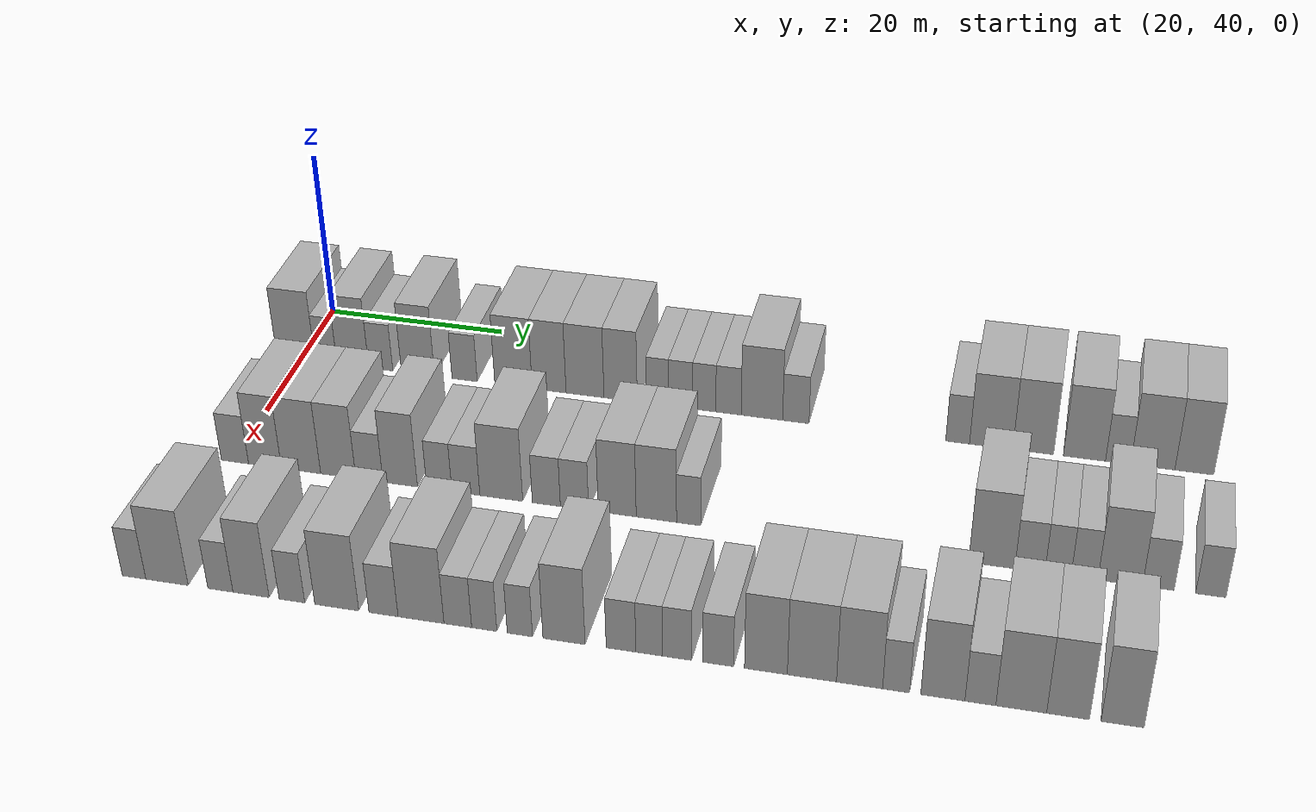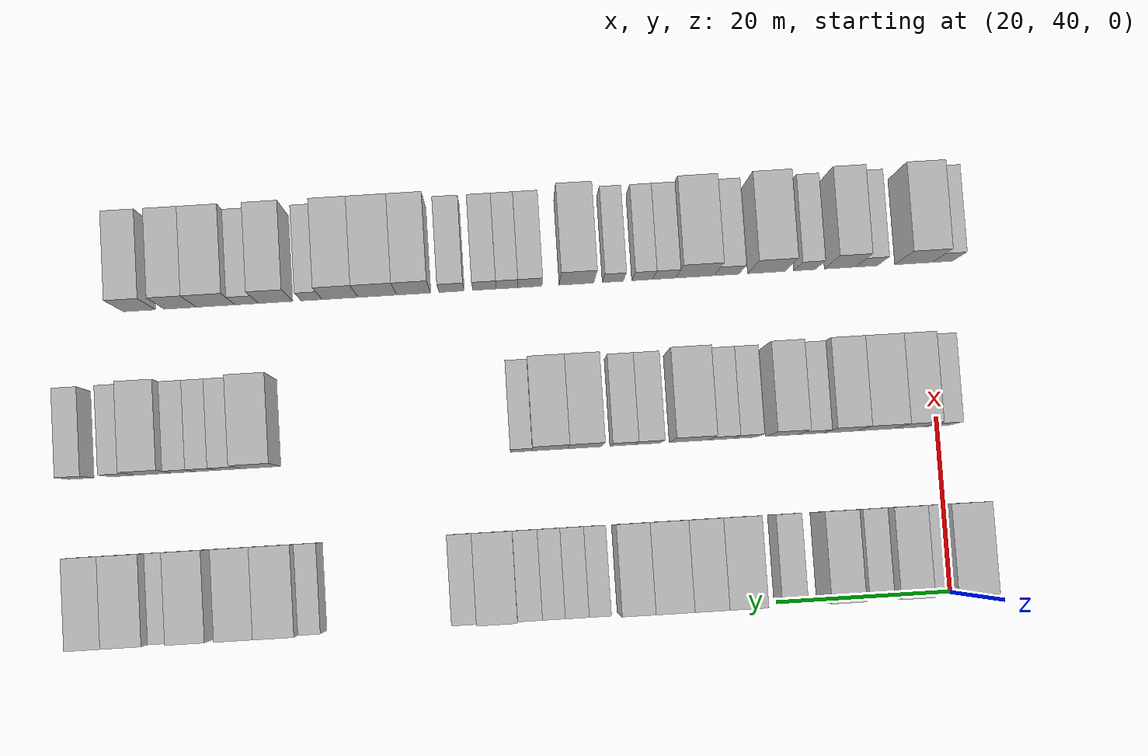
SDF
<sdf version="1.6">
 <world name="default">
  <model name="building_74">
   <static>1</static>
   <pose>25.0000 39.3322 0 0.000000 0.000000 0.000000</pose>
   <link name="link">
    <pose>0 0 4.50 0 0 0</pose>
    <collision name="collision"><geometry><box><size>10.0000 4.4958 9.0000</size></box></geometry></collision>
    <visual name="visual">
     <cast_shadows>0</cast_shadows>
     <geometry><box><size>10.0000 4.4958 9.0000</size></box></geometry>
     <material>
      <script>
       <uri>model://HANNAS_wall/materials/scripts</uri>
       <uri>model://HANNAS_wall/materials/textures</uri>
       <name>vrc/HANNAS_wall</name>
      </script>
     </material>
    </visual>
   </link>
  </model>
  <model name="building_75">
   <static>1</static>
   <pose>25.0000 42.8555 0 0.000000 0.000000 0.000000</pose>
   <link name="link">
    <pose>0 0 3.00 0 0 0</pose>
    <collision name="collision"><geometry><box><size>10.0000 2.5508 6.0000</size></box></geometry></collision>
    <visual name="visual">
     <cast_shadows>0</cast_shadows>
     <geometry><box><size>10.0000 2.5508 6.0000</size></box></geometry>
     <material>
      <script>
       <uri>model://HANNAS_wall/materials/scripts</uri>
       <uri>model://HANNAS_wall/materials/textures</uri>
       <name>vrc/HANNAS_wall</name>
      </script>
     </material>
    </visual>
   </link>
  </model>
  <model name="building_76">
   <static>1</static>
   <pose>25.0000 45.9827 0 0.000000 0.000000 0.000000</pose>
   <link name="link">
    <pose>0 0 4.50 0 0 0</pose>
    <collision name="collision"><geometry><box><size>10.0000 3.7036 9.0000</size></box></geometry></collision>
    <visual name="visual">
     <cast_shadows>0</cast_shadows>
     <geometry><box><size>10.0000 3.7036 9.0000</size></box></geometry>
     <material>
      <script>
       <uri>model://HANNAS_wall/materials/scripts</uri>
       <uri>model://HANNAS_wall/materials/textures</uri>
       <name>vrc/HANNAS_wall</name>
      </script>
     </material>
    </visual>
   </link>
  </model>
  <model name="building_77">
   <static>1</static>
   <pose>25.0000 49.2227 0 0.000000 0.000000 0.000000</pose>
   <link name="link">
    <pose>0 0 3.00 0 0 0</pose>
    <collision name="collision"><geometry><box><size>10.0000 2.7763 6.0000</size></box></geometry></collision>
    <visual name="visual">
     <cast_shadows>0</cast_shadows>
     <geometry><box><size>10.0000 2.7763 6.0000</size></box></geometry>
     <material>
      <script>
       <uri>model://HANNAS_wall/materials/scripts</uri>
       <uri>model://HANNAS_wall/materials/textures</uri>
       <name>vrc/HANNAS_wall</name>
      </script>
     </material>
    </visual>
   </link>
  </model>
  <model name="building_78">
   <static>1</static>
   <pose>25.0000 53.5101 0 0.000000 0.000000 0.000000</pose>
   <link name="link">
    <pose>0 0 4.50 0 0 0</pose>
    <collision name="collision"><geometry><box><size>10.0000 3.7986 9.0000</size></box></geometry></collision>
    <visual name="visual">
     <cast_shadows>0</cast_shadows>
     <geometry><box><size>10.0000 3.7986 9.0000</size></box></geometry>
     <material>
      <script>
       <uri>model://HANNAS_wall/materials/scripts</uri>
       <uri>model://HANNAS_wall/materials/textures</uri>
       <name>vrc/HANNAS_wall</name>
      </script>
     </material>
    </visual>
   </link>
  </model>
  <model name="building_79">
   <static>1</static>
   <pose>25.0000 58.8426 0 0.000000 0.000000 0.000000</pose>
   <link name="link">
    <pose>0 0 3.00 0 0 0</pose>
    <collision name="collision"><geometry><box><size>10.0000 2.8663 6.0000</size></box></geometry></collision>
    <visual name="visual">
     <cast_shadows>0</cast_shadows>
     <geometry><box><size>10.0000 2.8663 6.0000</size></box></geometry>
     <material>
      <script>
       <uri>model://HANNAS_wall/materials/scripts</uri>
       <uri>model://HANNAS_wall/materials/textures</uri>
       <name>vrc/HANNAS_wall</name>
      </script>
     </material>
    </visual>
   </link>
  </model>
  <model name="building_80">
   <static>1</static>
   <pose>25.0000 64.3835 0 0.000000 0.000000 0.000000</pose>
   <link name="link">
    <pose>0 0 4.50 0 0 0</pose>
    <collision name="collision"><geometry><box><size>10.0000 4.2156 9.0000</size></box></geometry></collision>
    <visual name="visual">
     <cast_shadows>0</cast_shadows>
     <geometry><box><size>10.0000 4.2156 9.0000</size></box></geometry>
     <material>
      <script>
       <uri>model://HANNAS_wall/materials/scripts</uri>
       <uri>model://HANNAS_wall/materials/textures</uri>
       <name>vrc/HANNAS_wall</name>
      </script>
     </material>
    </visual>
   </link>
  </model>
  <model name="building_81">
   <static>1</static>
   <pose>25.0000 68.3920 0 0.000000 0.000000 0.000000</pose>
   <link name="link">
    <pose>0 0 4.50 0 0 0</pose>
    <collision name="collision"><geometry><box><size>10.0000 3.8014 9.0000</size></box></geometry></collision>
    <visual name="visual">
     <cast_shadows>0</cast_shadows>
     <geometry><box><size>10.0000 3.8014 9.0000</size></box></geometry>
     <material>
      <script>
       <uri>model://HANNAS_wall/materials/scripts</uri>
       <uri>model://HANNAS_wall/materials/textures</uri>
       <name>vrc/HANNAS_wall</name>
      </script>
     </material>
    </visual>
   </link>
  </model>
  <model name="building_82">
   <static>1</static>
   <pose>25.0000 72.4098 0 0.000000 0.000000 0.000000</pose>
   <link name="link">
    <pose>0 0 4.50 0 0 0</pose>
    <collision name="collision"><geometry><box><size>10.0000 4.2342 9.0000</size></box></geometry></collision>
    <visual name="visual">
     <cast_shadows>0</cast_shadows>
     <geometry><box><size>10.0000 4.2342 9.0000</size></box></geometry>
     <material>
      <script>
       <uri>model://HANNAS_wall/materials/scripts</uri>
       <uri>model://HANNAS_wall/materials/textures</uri>
       <name>vrc/HANNAS_wall</name>
      </script>
     </material>
    </visual>
   </link>
  </model>
  <model name="building_83">
   <static>1</static>
   <pose>25.0000 76.3684 0 0.000000 0.000000 0.000000</pose>
   <link name="link">
    <pose>0 0 4.50 0 0 0</pose>
    <collision name="collision"><geometry><box><size>10.0000 3.6831 9.0000</size></box></geometry></collision>
    <visual name="visual">
     <cast_shadows>0</cast_shadows>
     <geometry><box><size>10.0000 3.6831 9.0000</size></box></geometry>
     <material>
      <script>
       <uri>model://HANNAS_wall/materials/scripts</uri>
       <uri>model://HANNAS_wall/materials/textures</uri>
       <name>vrc/HANNAS_wall</name>
      </script>
     </material>
    </visual>
   </link>
  </model>
  <model name="building_84">
   <static>1</static>
   <pose>25.0000 80.4334 0 0.000000 0.000000 0.000000</pose>
   <link name="link">
    <pose>0 0 3.00 0 0 0</pose>
    <collision name="collision"><geometry><box><size>10.0000 2.4469 6.0000</size></box></geometry></collision>
    <visual name="visual">
     <cast_shadows>0</cast_shadows>
     <geometry><box><size>10.0000 2.4469 6.0000</size></box></geometry>
     <material>
      <script>
       <uri>model://HANNAS_wall/materials/scripts</uri>
       <uri>model://HANNAS_wall/materials/textures</uri>
       <name>vrc/HANNAS_wall</name>
      </script>
     </material>
    </visual>
   </link>
  </model>
  <model name="building_85">
   <static>1</static>
   <pose>25.0000 82.9787 0 0.000000 0.000000 0.000000</pose>
   <link name="link">
    <pose>0 0 3.00 0 0 0</pose>
    <collision name="collision"><geometry><box><size>10.0000 2.6435 6.0000</size></box></geometry></collision>
    <visual name="visual">
     <cast_shadows>0</cast_shadows>
     <geometry><box><size>10.0000 2.6435 6.0000</size></box></geometry>
     <material>
      <script>
       <uri>model://HANNAS_wall/materials/scripts</uri>
       <uri>model://HANNAS_wall/materials/textures</uri>
       <name>vrc/HANNAS_wall</name>
      </script>
     </material>
    </visual>
   </link>
  </model>
  <model name="building_86">
   <static>1</static>
   <pose>25.0000 85.5653 0 0.000000 0.000000 0.000000</pose>
   <link name="link">
    <pose>0 0 3.00 0 0 0</pose>
    <collision name="collision"><geometry><box><size>10.0000 2.5298 6.0000</size></box></geometry></collision>
    <visual name="visual">
     <cast_shadows>0</cast_shadows>
     <geometry><box><size>10.0000 2.5298 6.0000</size></box></geometry>
     <material>
      <script>
       <uri>model://HANNAS_wall/materials/scripts</uri>
       <uri>model://HANNAS_wall/materials/textures</uri>
       <name>vrc/HANNAS_wall</name>
      </script>
     </material>
    </visual>
   </link>
  </model>
  <model name="building_87">
   <static>1</static>
   <pose>25.0000 88.2062 0 0.000000 0.000000 0.000000</pose>
   <link name="link">
    <pose>0 0 3.00 0 0 0</pose>
    <collision name="collision"><geometry><box><size>10.0000 2.7520 6.0000</size></box></geometry></collision>
    <visual name="visual">
     <cast_shadows>0</cast_shadows>
     <geometry><box><size>10.0000 2.7520 6.0000</size></box></geometry>
     <material>
      <script>
       <uri>model://HANNAS_wall/materials/scripts</uri>
       <uri>model://HANNAS_wall/materials/textures</uri>
       <name>vrc/HANNAS_wall</name>
      </script>
     </material>
    </visual>
   </link>
  </model>
  <model name="building_88">
   <static>1</static>
   <pose>25.0000 91.8163 0 0.000000 0.000000 0.000000</pose>
   <link name="link">
    <pose>0 0 4.50 0 0 0</pose>
    <collision name="collision"><geometry><box><size>10.0000 4.4682 9.0000</size></box></geometry></collision>
    <visual name="visual">
     <cast_shadows>0</cast_shadows>
     <geometry><box><size>10.0000 4.4682 9.0000</size></box></geometry>
     <material>
      <script>
       <uri>model://HANNAS_wall/materials/scripts</uri>
       <uri>model://HANNAS_wall/materials/textures</uri>
       <name>vrc/HANNAS_wall</name>
      </script>
     </material>
    </visual>
   </link>
  </model>
  <model name="building_89">
   <static>1</static>
   <pose>25.0000 95.4685 0 0.000000 0.000000 0.000000</pose>
   <link name="link">
    <pose>0 0 3.00 0 0 0</pose>
    <collision name="collision"><geometry><box><size>10.0000 2.8363 6.0000</size></box></geometry></collision>
    <visual name="visual">
     <cast_shadows>0</cast_shadows>
     <geometry><box><size>10.0000 2.8363 6.0000</size></box></geometry>
     <material>
      <script>
       <uri>model://HANNAS_wall/materials/scripts</uri>
       <uri>model://HANNAS_wall/materials/textures</uri>
       <name>vrc/HANNAS_wall</name>
      </script>
     </material>
    </visual>
   </link>
  </model>
  <model name="building_90">
   <static>1</static>
   <pose>25.0000 112.6101 0 0.000000 0.000000 0.000000</pose>
   <link name="link">
    <pose>0 0 3.00 0 0 0</pose>
    <collision name="collision"><geometry><box><size>10.0000 2.4823 6.0000</size></box></geometry></collision>
    <visual name="visual">
     <cast_shadows>0</cast_shadows>
     <geometry><box><size>10.0000 2.4823 6.0000</size></box></geometry>
     <material>
      <script>
       <uri>model://HANNAS_wall/materials/scripts</uri>
       <uri>model://HANNAS_wall/materials/textures</uri>
       <name>vrc/HANNAS_wall</name>
      </script>
     </material>
    </visual>
   </link>
  </model>
  <model name="building_91">
   <static>1</static>
   <pose>25.0000 116.0946 0 0.000000 0.000000 0.000000</pose>
   <link name="link">
    <pose>0 0 4.50 0 0 0</pose>
    <collision name="collision"><geometry><box><size>10.0000 4.4867 9.0000</size></box></geometry></collision>
    <visual name="visual">
     <cast_shadows>0</cast_shadows>
     <geometry><box><size>10.0000 4.4867 9.0000</size></box></geometry>
     <material>
      <script>
       <uri>model://HANNAS_wall/materials/scripts</uri>
       <uri>model://HANNAS_wall/materials/textures</uri>
       <name>vrc/HANNAS_wall</name>
      </script>
     </material>
    </visual>
   </link>
  </model>
  <model name="building_92">
   <static>1</static>
   <pose>25.0000 120.4470 0 0.000000 0.000000 0.000000</pose>
   <link name="link">
    <pose>0 0 4.50 0 0 0</pose>
    <collision name="collision"><geometry><box><size>10.0000 4.2181 9.0000</size></box></geometry></collision>
    <visual name="visual">
     <cast_shadows>0</cast_shadows>
     <geometry><box><size>10.0000 4.2181 9.0000</size></box></geometry>
     <material>
      <script>
       <uri>model://HANNAS_wall/materials/scripts</uri>
       <uri>model://HANNAS_wall/materials/textures</uri>
       <name>vrc/HANNAS_wall</name>
      </script>
     </material>
    </visual>
   </link>
  </model>
  <model name="building_93">
   <static>1</static>
   <pose>25.0000 125.7085 0 0.000000 0.000000 0.000000</pose>
   <link name="link">
    <pose>0 0 4.50 0 0 0</pose>
    <collision name="collision"><geometry><box><size>10.0000 4.3049 9.0000</size></box></geometry></collision>
    <visual name="visual">
     <cast_shadows>0</cast_shadows>
     <geometry><box><size>10.0000 4.3049 9.0000</size></box></geometry>
     <material>
      <script>
       <uri>model://HANNAS_wall/materials/scripts</uri>
       <uri>model://HANNAS_wall/materials/textures</uri>
       <name>vrc/HANNAS_wall</name>
      </script>
     </material>
    </visual>
   </link>
  </model>
  <model name="building_94">
   <static>1</static>
   <pose>25.0000 129.1371 0 0.000000 0.000000 0.000000</pose>
   <link name="link">
    <pose>0 0 3.00 0 0 0</pose>
    <collision name="collision"><geometry><box><size>10.0000 2.5523 6.0000</size></box></geometry></collision>
    <visual name="visual">
     <cast_shadows>0</cast_shadows>
     <geometry><box><size>10.0000 2.5523 6.0000</size></box></geometry>
     <material>
      <script>
       <uri>model://HANNAS_wall/materials/scripts</uri>
       <uri>model://HANNAS_wall/materials/textures</uri>
       <name>vrc/HANNAS_wall</name>
      </script>
     </material>
    </visual>
   </link>
  </model>
  <model name="building_95">
   <static>1</static>
   <pose>25.0000 132.6453 0 0.000000 0.000000 0.000000</pose>
   <link name="link">
    <pose>0 0 4.50 0 0 0</pose>
    <collision name="collision"><geometry><box><size>10.0000 4.4640 9.0000</size></box></geometry></collision>
    <visual name="visual">
     <cast_shadows>0</cast_shadows>
     <geometry><box><size>10.0000 4.4640 9.0000</size></box></geometry>
     <material>
      <script>
       <uri>model://HANNAS_wall/materials/scripts</uri>
       <uri>model://HANNAS_wall/materials/textures</uri>
       <name>vrc/HANNAS_wall</name>
      </script>
     </material>
    </visual>
   </link>
  </model>
  <model name="building_96">
   <static>1</static>
   <pose>25.0000 136.8360 0 0.000000 0.000000 0.000000</pose>
   <link name="link">
    <pose>0 0 4.50 0 0 0</pose>
    <collision name="collision"><geometry><box><size>10.0000 3.9174 9.0000</size></box></geometry></collision>
    <visual name="visual">
     <cast_shadows>0</cast_shadows>
     <geometry><box><size>10.0000 3.9174 9.0000</size></box></geometry>
     <material>
      <script>
       <uri>model://HANNAS_wall/materials/scripts</uri>
       <uri>model://HANNAS_wall/materials/textures</uri>
       <name>vrc/HANNAS_wall</name>
      </script>
     </material>
    </visual>
   </link>
  </model>
  <model name="building_185">
   <static>1</static>
   <pose>44.0000 40.1431 0 0.000000 0.000000 0.000000</pose>
   <link name="link">
    <pose>0 0 3.00 0 0 0</pose>
    <collision name="collision"><geometry><box><size>10.0000 2.9829 6.0000</size></box></geometry></collision>
    <visual name="visual">
     <cast_shadows>0</cast_shadows>
     <geometry><box><size>10.0000 2.9829 6.0000</size></box></geometry>
     <material>
      <script>
       <uri>model://HANNAS_wall/materials/scripts</uri>
       <uri>model://HANNAS_wall/materials/textures</uri>
       <name>vrc/HANNAS_wall</name>
      </script>
     </material>
    </visual>
   </link>
  </model>
  <model name="building_186">
   <static>1</static>
   <pose>44.0000 43.4349 0 0.000000 0.000000 0.000000</pose>
   <link name="link">
    <pose>0 0 4.50 0 0 0</pose>
    <collision name="collision"><geometry><box><size>10.0000 3.6007 9.0000</size></box></geometry></collision>
    <visual name="visual">
     <cast_shadows>0</cast_shadows>
     <geometry><box><size>10.0000 3.6007 9.0000</size></box></geometry>
     <material>
      <script>
       <uri>model://HANNAS_wall/materials/scripts</uri>
       <uri>model://HANNAS_wall/materials/textures</uri>
       <name>vrc/HANNAS_wall</name>
      </script>
     </material>
    </visual>
   </link>
  </model>
  <model name="building_187">
   <static>1</static>
   <pose>44.0000 47.3639 0 0.000000 0.000000 0.000000</pose>
   <link name="link">
    <pose>0 0 4.50 0 0 0</pose>
    <collision name="collision"><geometry><box><size>10.0000 4.2572 9.0000</size></box></geometry></collision>
    <visual name="visual">
     <cast_shadows>0</cast_shadows>
     <geometry><box><size>10.0000 4.2572 9.0000</size></box></geometry>
     <material>
      <script>
       <uri>model://HANNAS_wall/materials/scripts</uri>
       <uri>model://HANNAS_wall/materials/textures</uri>
       <name>vrc/HANNAS_wall</name>
      </script>
     </material>
    </visual>
   </link>
  </model>
  <model name="building_188">
   <static>1</static>
   <pose>44.0000 51.3937 0 0.000000 0.000000 0.000000</pose>
   <link name="link">
    <pose>0 0 4.50 0 0 0</pose>
    <collision name="collision"><geometry><box><size>10.0000 3.8025 9.0000</size></box></geometry></collision>
    <visual name="visual">
     <cast_shadows>0</cast_shadows>
     <geometry><box><size>10.0000 3.8025 9.0000</size></box></geometry>
     <material>
      <script>
       <uri>model://HANNAS_wall/materials/scripts</uri>
       <uri>model://HANNAS_wall/materials/textures</uri>
       <name>vrc/HANNAS_wall</name>
      </script>
     </material>
    </visual>
   </link>
  </model>
  <model name="building_189">
   <static>1</static>
   <pose>44.0000 54.7465 0 0.000000 0.000000 0.000000</pose>
   <link name="link">
    <pose>0 0 3.00 0 0 0</pose>
    <collision name="collision"><geometry><box><size>10.0000 2.9029 6.0000</size></box></geometry></collision>
    <visual name="visual">
     <cast_shadows>0</cast_shadows>
     <geometry><box><size>10.0000 2.9029 6.0000</size></box></geometry>
     <material>
      <script>
       <uri>model://HANNAS_wall/materials/scripts</uri>
       <uri>model://HANNAS_wall/materials/textures</uri>
       <name>vrc/HANNAS_wall</name>
      </script>
     </material>
    </visual>
   </link>
  </model>
  <model name="building_190">
   <static>1</static>
   <pose>44.0000 58.0348 0 0.000000 0.000000 0.000000</pose>
   <link name="link">
    <pose>0 0 4.50 0 0 0</pose>
    <collision name="collision"><geometry><box><size>10.0000 3.6737 9.0000</size></box></geometry></collision>
    <visual name="visual">
     <cast_shadows>0</cast_shadows>
     <geometry><box><size>10.0000 3.6737 9.0000</size></box></geometry>
     <material>
      <script>
       <uri>model://HANNAS_wall/materials/scripts</uri>
       <uri>model://HANNAS_wall/materials/textures</uri>
       <name>vrc/HANNAS_wall</name>
      </script>
     </material>
    </visual>
   </link>
  </model>
  <model name="building_191">
   <static>1</static>
   <pose>44.0000 62.1975 0 0.000000 0.000000 0.000000</pose>
   <link name="link">
    <pose>0 0 3.00 0 0 0</pose>
    <collision name="collision"><geometry><box><size>10.0000 2.6518 6.0000</size></box></geometry></collision>
    <visual name="visual">
     <cast_shadows>0</cast_shadows>
     <geometry><box><size>10.0000 2.6518 6.0000</size></box></geometry>
     <material>
      <script>
       <uri>model://HANNAS_wall/materials/scripts</uri>
       <uri>model://HANNAS_wall/materials/textures</uri>
       <name>vrc/HANNAS_wall</name>
      </script>
     </material>
    </visual>
   </link>
  </model>
  <model name="building_192">
   <static>1</static>
   <pose>44.0000 64.9943 0 0.000000 0.000000 0.000000</pose>
   <link name="link">
    <pose>0 0 3.00 0 0 0</pose>
    <collision name="collision"><geometry><box><size>10.0000 2.9417 6.0000</size></box></geometry></collision>
    <visual name="visual">
     <cast_shadows>0</cast_shadows>
     <geometry><box><size>10.0000 2.9417 6.0000</size></box></geometry>
     <material>
      <script>
       <uri>model://HANNAS_wall/materials/scripts</uri>
       <uri>model://HANNAS_wall/materials/textures</uri>
       <name>vrc/HANNAS_wall</name>
      </script>
     </material>
    </visual>
   </link>
  </model>
  <model name="building_193">
   <static>1</static>
   <pose>44.0000 68.7101 0 0.000000 0.000000 0.000000</pose>
   <link name="link">
    <pose>0 0 4.50 0 0 0</pose>
    <collision name="collision"><geometry><box><size>10.0000 4.4899 9.0000</size></box></geometry></collision>
    <visual name="visual">
     <cast_shadows>0</cast_shadows>
     <geometry><box><size>10.0000 4.4899 9.0000</size></box></geometry>
     <material>
      <script>
       <uri>model://HANNAS_wall/materials/scripts</uri>
       <uri>model://HANNAS_wall/materials/textures</uri>
       <name>vrc/HANNAS_wall</name>
      </script>
     </material>
    </visual>
   </link>
  </model>
  <model name="building_194">
   <static>1</static>
   <pose>44.0000 73.4121 0 0.000000 0.000000 0.000000</pose>
   <link name="link">
    <pose>0 0 3.00 0 0 0</pose>
    <collision name="collision"><geometry><box><size>10.0000 2.9141 6.0000</size></box></geometry></collision>
    <visual name="visual">
     <cast_shadows>0</cast_shadows>
     <geometry><box><size>10.0000 2.9141 6.0000</size></box></geometry>
     <material>
      <script>
       <uri>model://HANNAS_wall/materials/scripts</uri>
       <uri>model://HANNAS_wall/materials/textures</uri>
       <name>vrc/HANNAS_wall</name>
      </script>
     </material>
    </visual>
   </link>
  </model>
  <model name="building_195">
   <static>1</static>
   <pose>44.0000 76.3291 0 0.000000 0.000000 0.000000</pose>
   <link name="link">
    <pose>0 0 3.00 0 0 0</pose>
    <collision name="collision"><geometry><box><size>10.0000 2.9200 6.0000</size></box></geometry></collision>
    <visual name="visual">
     <cast_shadows>0</cast_shadows>
     <geometry><box><size>10.0000 2.9200 6.0000</size></box></geometry>
     <material>
      <script>
       <uri>model://HANNAS_wall/materials/scripts</uri>
       <uri>model://HANNAS_wall/materials/textures</uri>
       <name>vrc/HANNAS_wall</name>
      </script>
     </material>
    </visual>
   </link>
  </model>
  <model name="building_196">
   <static>1</static>
   <pose>44.0000 80.7308 0 0.000000 0.000000 0.000000</pose>
   <link name="link">
    <pose>0 0 4.50 0 0 0</pose>
    <collision name="collision"><geometry><box><size>10.0000 3.8834 9.0000</size></box></geometry></collision>
    <visual name="visual">
     <cast_shadows>0</cast_shadows>
     <geometry><box><size>10.0000 3.8834 9.0000</size></box></geometry>
     <material>
      <script>
       <uri>model://HANNAS_wall/materials/scripts</uri>
       <uri>model://HANNAS_wall/materials/textures</uri>
       <name>vrc/HANNAS_wall</name>
      </script>
     </material>
    </visual>
   </link>
  </model>
  <model name="building_197">
   <static>1</static>
   <pose>44.0000 84.7281 0 0.000000 0.000000 0.000000</pose>
   <link name="link">
    <pose>0 0 4.50 0 0 0</pose>
    <collision name="collision"><geometry><box><size>10.0000 4.1111 9.0000</size></box></geometry></collision>
    <visual name="visual">
     <cast_shadows>0</cast_shadows>
     <geometry><box><size>10.0000 4.1111 9.0000</size></box></geometry>
     <material>
      <script>
       <uri>model://HANNAS_wall/materials/scripts</uri>
       <uri>model://HANNAS_wall/materials/textures</uri>
       <name>vrc/HANNAS_wall</name>
      </script>
     </material>
    </visual>
   </link>
  </model>
  <model name="building_198">
   <static>1</static>
   <pose>44.0000 88.0117 0 0.000000 0.000000 0.000000</pose>
   <link name="link">
    <pose>0 0 3.00 0 0 0</pose>
    <collision name="collision"><geometry><box><size>10.0000 2.4561 6.0000</size></box></geometry></collision>
    <visual name="visual">
     <cast_shadows>0</cast_shadows>
     <geometry><box><size>10.0000 2.4561 6.0000</size></box></geometry>
     <material>
      <script>
       <uri>model://HANNAS_wall/materials/scripts</uri>
       <uri>model://HANNAS_wall/materials/textures</uri>
       <name>vrc/HANNAS_wall</name>
      </script>
     </material>
    </visual>
   </link>
  </model>
  <model name="building_199">
   <static>1</static>
   <pose>44.0000 117.9008 0 0.000000 0.000000 0.000000</pose>
   <link name="link">
    <pose>0 0 4.50 0 0 0</pose>
    <collision name="collision"><geometry><box><size>10.0000 4.4407 9.0000</size></box></geometry></collision>
    <visual name="visual">
     <cast_shadows>0</cast_shadows>
     <geometry><box><size>10.0000 4.4407 9.0000</size></box></geometry>
     <material>
      <script>
       <uri>model://HANNAS_wall/materials/scripts</uri>
       <uri>model://HANNAS_wall/materials/textures</uri>
       <name>vrc/HANNAS_wall</name>
      </script>
     </material>
    </visual>
   </link>
  </model>
  <model name="building_200">
   <static>1</static>
   <pose>44.0000 121.5549 0 0.000000 0.000000 0.000000</pose>
   <link name="link">
    <pose>0 0 3.00 0 0 0</pose>
    <collision name="collision"><geometry><box><size>10.0000 2.8676 6.0000</size></box></geometry></collision>
    <visual name="visual">
     <cast_shadows>0</cast_shadows>
     <geometry><box><size>10.0000 2.8676 6.0000</size></box></geometry>
     <material>
      <script>
       <uri>model://HANNAS_wall/materials/scripts</uri>
       <uri>model://HANNAS_wall/materials/textures</uri>
       <name>vrc/HANNAS_wall</name>
      </script>
     </material>
    </visual>
   </link>
  </model>
  <model name="building_201">
   <static>1</static>
   <pose>44.0000 124.2289 0 0.000000 0.000000 0.000000</pose>
   <link name="link">
    <pose>0 0 3.00 0 0 0</pose>
    <collision name="collision"><geometry><box><size>10.0000 2.4803 6.0000</size></box></geometry></collision>
    <visual name="visual">
     <cast_shadows>0</cast_shadows>
     <geometry><box><size>10.0000 2.4803 6.0000</size></box></geometry>
     <material>
      <script>
       <uri>model://HANNAS_wall/materials/scripts</uri>
       <uri>model://HANNAS_wall/materials/textures</uri>
       <name>vrc/HANNAS_wall</name>
      </script>
     </material>
    </visual>
   </link>
  </model>
  <model name="building_202">
   <static>1</static>
   <pose>44.0000 126.7355 0 0.000000 0.000000 0.000000</pose>
   <link name="link">
    <pose>0 0 3.00 0 0 0</pose>
    <collision name="collision"><geometry><box><size>10.0000 2.5328 6.0000</size></box></geometry></collision>
    <visual name="visual">
     <cast_shadows>0</cast_shadows>
     <geometry><box><size>10.0000 2.5328 6.0000</size></box></geometry>
     <material>
      <script>
       <uri>model://HANNAS_wall/materials/scripts</uri>
       <uri>model://HANNAS_wall/materials/textures</uri>
       <name>vrc/HANNAS_wall</name>
      </script>
     </material>
    </visual>
   </link>
  </model>
  <model name="building_203">
   <static>1</static>
   <pose>44.0000 130.0985 0 0.000000 0.000000 0.000000</pose>
   <link name="link">
    <pose>0 0 4.50 0 0 0</pose>
    <collision name="collision"><geometry><box><size>10.0000 4.1933 9.0000</size></box></geometry></collision>
    <visual name="visual">
     <cast_shadows>0</cast_shadows>
     <geometry><box><size>10.0000 4.1933 9.0000</size></box></geometry>
     <material>
      <script>
       <uri>model://HANNAS_wall/materials/scripts</uri>
       <uri>model://HANNAS_wall/materials/textures</uri>
       <name>vrc/HANNAS_wall</name>
      </script>
     </material>
    </visual>
   </link>
  </model>
  <model name="building_204">
   <static>1</static>
   <pose>44.0000 133.6754 0 0.000000 0.000000 0.000000</pose>
   <link name="link">
    <pose>0 0 3.00 0 0 0</pose>
    <collision name="collision"><geometry><box><size>10.0000 2.9605 6.0000</size></box></geometry></collision>
    <visual name="visual">
     <cast_shadows>0</cast_shadows>
     <geometry><box><size>10.0000 2.9605 6.0000</size></box></geometry>
     <material>
      <script>
       <uri>model://HANNAS_wall/materials/scripts</uri>
       <uri>model://HANNAS_wall/materials/textures</uri>
       <name>vrc/HANNAS_wall</name>
      </script>
     </material>
    </visual>
   </link>
  </model>
  <model name="building_205">
   <static>1</static>
   <pose>44.0000 138.5619 0 0.000000 0.000000 0.000000</pose>
   <link name="link">
    <pose>0 0 3.00 0 0 0</pose>
    <collision name="collision"><geometry><box><size>10.0000 2.8124 6.0000</size></box></geometry></collision>
    <visual name="visual">
     <cast_shadows>0</cast_shadows>
     <geometry><box><size>10.0000 2.8124 6.0000</size></box></geometry>
     <material>
      <script>
       <uri>model://HANNAS_wall/materials/scripts</uri>
       <uri>model://HANNAS_wall/materials/textures</uri>
       <name>vrc/HANNAS_wall</name>
      </script>
     </material>
    </visual>
   </link>
  </model>
  <model name="building_299">
   <static>1</static>
   <pose>63.0000 37.8719 0 0.000000 0.000000 0.000000</pose>
   <link name="link">
    <pose>0 0 3.00 0 0 0</pose>
    <collision name="collision"><geometry><box><size>10.0000 2.4067 6.0000</size></box></geometry></collision>
    <visual name="visual">
     <cast_shadows>0</cast_shadows>
     <geometry><box><size>10.0000 2.4067 6.0000</size></box></geometry>
     <material>
      <script>
       <uri>model://HANNAS_wall/materials/scripts</uri>
       <uri>model://HANNAS_wall/materials/textures</uri>
       <name>vrc/HANNAS_wall</name>
      </script>
     </material>
    </visual>
   </link>
  </model>
  <model name="building_300">
   <static>1</static>
   <pose>63.0000 41.2428 0 0.000000 0.000000 0.000000</pose>
   <link name="link">
    <pose>0 0 4.50 0 0 0</pose>
    <collision name="collision"><geometry><box><size>10.0000 4.3351 9.0000</size></box></geometry></collision>
    <visual name="visual">
     <cast_shadows>0</cast_shadows>
     <geometry><box><size>10.0000 4.3351 9.0000</size></box></geometry>
     <material>
      <script>
       <uri>model://HANNAS_wall/materials/scripts</uri>
       <uri>model://HANNAS_wall/materials/textures</uri>
       <name>vrc/HANNAS_wall</name>
      </script>
     </material>
    </visual>
   </link>
  </model>
  <model name="building_301">
   <static>1</static>
   <pose>63.0000 46.6826 0 0.000000 0.000000 0.000000</pose>
   <link name="link">
    <pose>0 0 3.00 0 0 0</pose>
    <collision name="collision"><geometry><box><size>10.0000 2.5446 6.0000</size></box></geometry></collision>
    <visual name="visual">
     <cast_shadows>0</cast_shadows>
     <geometry><box><size>10.0000 2.5446 6.0000</size></box></geometry>
     <material>
      <script>
       <uri>model://HANNAS_wall/materials/scripts</uri>
       <uri>model://HANNAS_wall/materials/textures</uri>
       <name>vrc/HANNAS_wall</name>
      </script>
     </material>
    </visual>
   </link>
  </model>
  <model name="building_302">
   <static>1</static>
   <pose>63.0000 49.7782 0 0.000000 0.000000 0.000000</pose>
   <link name="link">
    <pose>0 0 4.50 0 0 0</pose>
    <collision name="collision"><geometry><box><size>10.0000 3.6466 9.0000</size></box></geometry></collision>
    <visual name="visual">
     <cast_shadows>0</cast_shadows>
     <geometry><box><size>10.0000 3.6466 9.0000</size></box></geometry>
     <material>
      <script>
       <uri>model://HANNAS_wall/materials/scripts</uri>
       <uri>model://HANNAS_wall/materials/textures</uri>
       <name>vrc/HANNAS_wall</name>
      </script>
     </material>
    </visual>
   </link>
  </model>
  <model name="building_303">
   <static>1</static>
   <pose>63.0000 53.8826 0 0.000000 0.000000 0.000000</pose>
   <link name="link">
    <pose>0 0 3.00 0 0 0</pose>
    <collision name="collision"><geometry><box><size>10.0000 2.5620 6.0000</size></box></geometry></collision>
    <visual name="visual">
     <cast_shadows>0</cast_shadows>
     <geometry><box><size>10.0000 2.5620 6.0000</size></box></geometry>
     <material>
      <script>
       <uri>model://HANNAS_wall/materials/scripts</uri>
       <uri>model://HANNAS_wall/materials/textures</uri>
       <name>vrc/HANNAS_wall</name>
      </script>
     </material>
    </visual>
   </link>
  </model>
  <model name="building_304">
   <static>1</static>
   <pose>63.0000 58.3463 0 0.000000 0.000000 0.000000</pose>
   <link name="link">
    <pose>0 0 4.50 0 0 0</pose>
    <collision name="collision"><geometry><box><size>10.0000 4.3653 9.0000</size></box></geometry></collision>
    <visual name="visual">
     <cast_shadows>0</cast_shadows>
     <geometry><box><size>10.0000 4.3653 9.0000</size></box></geometry>
     <material>
      <script>
       <uri>model://HANNAS_wall/materials/scripts</uri>
       <uri>model://HANNAS_wall/materials/textures</uri>
       <name>vrc/HANNAS_wall</name>
      </script>
     </material>
    </visual>
   </link>
  </model>
  <model name="building_305">
   <static>1</static>
   <pose>63.0000 62.9622 0 0.000000 0.000000 0.000000</pose>
   <link name="link">
    <pose>0 0 3.00 0 0 0</pose>
    <collision name="collision"><geometry><box><size>10.0000 2.8665 6.0000</size></box></geometry></collision>
    <visual name="visual">
     <cast_shadows>0</cast_shadows>
     <geometry><box><size>10.0000 2.8665 6.0000</size></box></geometry>
     <material>
      <script>
       <uri>model://HANNAS_wall/materials/scripts</uri>
       <uri>model://HANNAS_wall/materials/textures</uri>
       <name>vrc/HANNAS_wall</name>
      </script>
     </material>
    </visual>
   </link>
  </model>
  <model name="building_306">
   <static>1</static>
   <pose>63.0000 66.6370 0 0.000000 0.000000 0.000000</pose>
   <link name="link">
    <pose>0 0 4.50 0 0 0</pose>
    <collision name="collision"><geometry><box><size>10.0000 4.4831 9.0000</size></box></geometry></collision>
    <visual name="visual">
     <cast_shadows>0</cast_shadows>
     <geometry><box><size>10.0000 4.4831 9.0000</size></box></geometry>
     <material>
      <script>
       <uri>model://HANNAS_wall/materials/scripts</uri>
       <uri>model://HANNAS_wall/materials/textures</uri>
       <name>vrc/HANNAS_wall</name>
      </script>
     </material>
    </visual>
   </link>
  </model>
  <model name="building_307">
   <static>1</static>
   <pose>63.0000 70.2202 0 0.000000 0.000000 0.000000</pose>
   <link name="link">
    <pose>0 0 3.00 0 0 0</pose>
    <collision name="collision"><geometry><box><size>10.0000 2.6832 6.0000</size></box></geometry></collision>
    <visual name="visual">
     <cast_shadows>0</cast_shadows>
     <geometry><box><size>10.0000 2.6832 6.0000</size></box></geometry>
     <material>
      <script>
       <uri>model://HANNAS_wall/materials/scripts</uri>
       <uri>model://HANNAS_wall/materials/textures</uri>
       <name>vrc/HANNAS_wall</name>
      </script>
     </material>
    </visual>
   </link>
  </model>
  <model name="building_308">
   <static>1</static>
   <pose>63.0000 72.7784 0 0.000000 0.000000 0.000000</pose>
   <link name="link">
    <pose>0 0 3.00 0 0 0</pose>
    <collision name="collision"><geometry><box><size>10.0000 2.4334 6.0000</size></box></geometry></collision>
    <visual name="visual">
     <cast_shadows>0</cast_shadows>
     <geometry><box><size>10.0000 2.4334 6.0000</size></box></geometry>
     <material>
      <script>
       <uri>model://HANNAS_wall/materials/scripts</uri>
       <uri>model://HANNAS_wall/materials/textures</uri>
       <name>vrc/HANNAS_wall</name>
      </script>
     </material>
    </visual>
   </link>
  </model>
  <model name="building_309">
   <static>1</static>
   <pose>63.0000 76.2073 0 0.000000 0.000000 0.000000</pose>
   <link name="link">
    <pose>0 0 3.00 0 0 0</pose>
    <collision name="collision"><geometry><box><size>10.0000 2.4243 6.0000</size></box></geometry></collision>
    <visual name="visual">
     <cast_shadows>0</cast_shadows>
     <geometry><box><size>10.0000 2.4243 6.0000</size></box></geometry>
     <material>
      <script>
       <uri>model://HANNAS_wall/materials/scripts</uri>
       <uri>model://HANNAS_wall/materials/textures</uri>
       <name>vrc/HANNAS_wall</name>
      </script>
     </material>
    </visual>
   </link>
  </model>
  <model name="building_310">
   <static>1</static>
   <pose>63.0000 80.4223 0 0.000000 0.000000 0.000000</pose>
   <link name="link">
    <pose>0 0 4.50 0 0 0</pose>
    <collision name="collision"><geometry><box><size>10.0000 4.0057 9.0000</size></box></geometry></collision>
    <visual name="visual">
     <cast_shadows>0</cast_shadows>
     <geometry><box><size>10.0000 4.0057 9.0000</size></box></geometry>
     <material>
      <script>
       <uri>model://HANNAS_wall/materials/scripts</uri>
       <uri>model://HANNAS_wall/materials/textures</uri>
       <name>vrc/HANNAS_wall</name>
      </script>
     </material>
    </visual>
   </link>
  </model>
  <model name="building_311">
   <static>1</static>
   <pose>63.0000 85.8263 0 0.000000 0.000000 0.000000</pose>
   <link name="link">
    <pose>0 0 3.00 0 0 0</pose>
    <collision name="collision"><geometry><box><size>10.0000 2.8021 6.0000</size></box></geometry></collision>
    <visual name="visual">
     <cast_shadows>0</cast_shadows>
     <geometry><box><size>10.0000 2.8021 6.0000</size></box></geometry>
     <material>
      <script>
       <uri>model://HANNAS_wall/materials/scripts</uri>
       <uri>model://HANNAS_wall/materials/textures</uri>
       <name>vrc/HANNAS_wall</name>
      </script>
     </material>
    </visual>
   </link>
  </model>
  <model name="building_312">
   <static>1</static>
   <pose>63.0000 88.4804 0 0.000000 0.000000 0.000000</pose>
   <link name="link">
    <pose>0 0 3.00 0 0 0</pose>
    <collision name="collision"><geometry><box><size>10.0000 2.5061 6.0000</size></box></geometry></collision>
    <visual name="visual">
     <cast_shadows>0</cast_shadows>
     <geometry><box><size>10.0000 2.5061 6.0000</size></box></geometry>
     <material>
      <script>
       <uri>model://HANNAS_wall/materials/scripts</uri>
       <uri>model://HANNAS_wall/materials/textures</uri>
       <name>vrc/HANNAS_wall</name>
      </script>
     </material>
    </visual>
   </link>
  </model>
  <model name="building_313">
   <static>1</static>
   <pose>63.0000 91.0857 0 0.000000 0.000000 0.000000</pose>
   <link name="link">
    <pose>0 0 3.00 0 0 0</pose>
    <collision name="collision"><geometry><box><size>10.0000 2.7044 6.0000</size></box></geometry></collision>
    <visual name="visual">
     <cast_shadows>0</cast_shadows>
     <geometry><box><size>10.0000 2.7044 6.0000</size></box></geometry>
     <material>
      <script>
       <uri>model://HANNAS_wall/materials/scripts</uri>
       <uri>model://HANNAS_wall/materials/textures</uri>
       <name>vrc/HANNAS_wall</name>
      </script>
     </material>
    </visual>
   </link>
  </model>
  <model name="building_314">
   <static>1</static>
   <pose>63.0000 94.8861 0 0.000000 0.000000 0.000000</pose>
   <link name="link">
    <pose>0 0 3.00 0 0 0</pose>
    <collision name="collision"><geometry><box><size>10.0000 2.8964 6.0000</size></box></geometry></collision>
    <visual name="visual">
     <cast_shadows>0</cast_shadows>
     <geometry><box><size>10.0000 2.8964 6.0000</size></box></geometry>
     <material>
      <script>
       <uri>model://HANNAS_wall/materials/scripts</uri>
       <uri>model://HANNAS_wall/materials/textures</uri>
       <name>vrc/HANNAS_wall</name>
      </script>
     </material>
    </visual>
   </link>
  </model>
  <model name="building_315">
   <static>1</static>
   <pose>63.0000 99.3007 0 0.000000 0.000000 0.000000</pose>
   <link name="link">
    <pose>0 0 4.50 0 0 0</pose>
    <collision name="collision"><geometry><box><size>10.0000 3.9327 9.0000</size></box></geometry></collision>
    <visual name="visual">
     <cast_shadows>0</cast_shadows>
     <geometry><box><size>10.0000 3.9327 9.0000</size></box></geometry>
     <material>
      <script>
       <uri>model://HANNAS_wall/materials/scripts</uri>
       <uri>model://HANNAS_wall/materials/textures</uri>
       <name>vrc/HANNAS_wall</name>
      </script>
     </material>
    </visual>
   </link>
  </model>
  <model name="building_316">
   <static>1</static>
   <pose>63.0000 103.5090 0 0.000000 0.000000 0.000000</pose>
   <link name="link">
    <pose>0 0 4.50 0 0 0</pose>
    <collision name="collision"><geometry><box><size>10.0000 4.4839 9.0000</size></box></geometry></collision>
    <visual name="visual">
     <cast_shadows>0</cast_shadows>
     <geometry><box><size>10.0000 4.4839 9.0000</size></box></geometry>
     <material>
      <script>
       <uri>model://HANNAS_wall/materials/scripts</uri>
       <uri>model://HANNAS_wall/materials/textures</uri>
       <name>vrc/HANNAS_wall</name>
      </script>
     </material>
    </visual>
   </link>
  </model>
  <model name="building_317">
   <static>1</static>
   <pose>63.0000 107.8317 0 0.000000 0.000000 0.000000</pose>
   <link name="link">
    <pose>0 0 4.50 0 0 0</pose>
    <collision name="collision"><geometry><box><size>10.0000 4.1615 9.0000</size></box></geometry></collision>
    <visual name="visual">
     <cast_shadows>0</cast_shadows>
     <geometry><box><size>10.0000 4.1615 9.0000</size></box></geometry>
     <material>
      <script>
       <uri>model://HANNAS_wall/materials/scripts</uri>
       <uri>model://HANNAS_wall/materials/textures</uri>
       <name>vrc/HANNAS_wall</name>
      </script>
     </material>
    </visual>
   </link>
  </model>
  <model name="building_318">
   <static>1</static>
   <pose>63.0000 111.1244 0 0.000000 0.000000 0.000000</pose>
   <link name="link">
    <pose>0 0 3.00 0 0 0</pose>
    <collision name="collision"><geometry><box><size>10.0000 2.4241 6.0000</size></box></geometry></collision>
    <visual name="visual">
     <cast_shadows>0</cast_shadows>
     <geometry><box><size>10.0000 2.4241 6.0000</size></box></geometry>
     <material>
      <script>
       <uri>model://HANNAS_wall/materials/scripts</uri>
       <uri>model://HANNAS_wall/materials/textures</uri>
       <name>vrc/HANNAS_wall</name>
      </script>
     </material>
    </visual>
   </link>
  </model>
  <model name="building_319">
   <static>1</static>
   <pose>63.0000 115.3024 0 0.000000 0.000000 0.000000</pose>
   <link name="link">
    <pose>0 0 4.50 0 0 0</pose>
    <collision name="collision"><geometry><box><size>10.0000 3.9319 9.0000</size></box></geometry></collision>
    <visual name="visual">
     <cast_shadows>0</cast_shadows>
     <geometry><box><size>10.0000 3.9319 9.0000</size></box></geometry>
     <material>
      <script>
       <uri>model://HANNAS_wall/materials/scripts</uri>
       <uri>model://HANNAS_wall/materials/textures</uri>
       <name>vrc/HANNAS_wall</name>
      </script>
     </material>
    </visual>
   </link>
  </model>
  <model name="building_320">
   <static>1</static>
   <pose>63.0000 118.6356 0 0.000000 0.000000 0.000000</pose>
   <link name="link">
    <pose>0 0 3.00 0 0 0</pose>
    <collision name="collision"><geometry><box><size>10.0000 2.7344 6.0000</size></box></geometry></collision>
    <visual name="visual">
     <cast_shadows>0</cast_shadows>
     <geometry><box><size>10.0000 2.7344 6.0000</size></box></geometry>
     <material>
      <script>
       <uri>model://HANNAS_wall/materials/scripts</uri>
       <uri>model://HANNAS_wall/materials/textures</uri>
       <name>vrc/HANNAS_wall</name>
      </script>
     </material>
    </visual>
   </link>
  </model>
  <model name="building_321">
   <static>1</static>
   <pose>63.0000 122.2363 0 0.000000 0.000000 0.000000</pose>
   <link name="link">
    <pose>0 0 4.50 0 0 0</pose>
    <collision name="collision"><geometry><box><size>10.0000 4.4671 9.0000</size></box></geometry></collision>
    <visual name="visual">
     <cast_shadows>0</cast_shadows>
     <geometry><box><size>10.0000 4.4671 9.0000</size></box></geometry>
     <material>
      <script>
       <uri>model://HANNAS_wall/materials/scripts</uri>
       <uri>model://HANNAS_wall/materials/textures</uri>
       <name>vrc/HANNAS_wall</name>
      </script>
     </material>
    </visual>
   </link>
  </model>
  <model name="building_322">
   <static>1</static>
   <pose>63.0000 126.3395 0 0.000000 0.000000 0.000000</pose>
   <link name="link">
    <pose>0 0 4.50 0 0 0</pose>
    <collision name="collision"><geometry><box><size>10.0000 3.7393 9.0000</size></box></geometry></collision>
    <visual name="visual">
     <cast_shadows>0</cast_shadows>
     <geometry><box><size>10.0000 3.7393 9.0000</size></box></geometry>
     <material>
      <script>
       <uri>model://HANNAS_wall/materials/scripts</uri>
       <uri>model://HANNAS_wall/materials/textures</uri>
       <name>vrc/HANNAS_wall</name>
      </script>
     </material>
    </visual>
   </link>
  </model>
  <model name="building_323">
   <static>1</static>
   <pose>63.0000 131.0705 0 0.000000 0.000000 0.000000</pose>
   <link name="link">
    <pose>0 0 4.50 0 0 0</pose>
    <collision name="collision"><geometry><box><size>10.0000 3.7228 9.0000</size></box></geometry></collision>
    <visual name="visual">
     <cast_shadows>0</cast_shadows>
     <geometry><box><size>10.0000 3.7228 9.0000</size></box></geometry>
     <material>
      <script>
       <uri>model://HANNAS_wall/materials/scripts</uri>
       <uri>model://HANNAS_wall/materials/textures</uri>
       <name>vrc/HANNAS_wall</name>
      </script>
     </material>
    </visual>
   </link>
  </model>
 </world>
</sdf>
